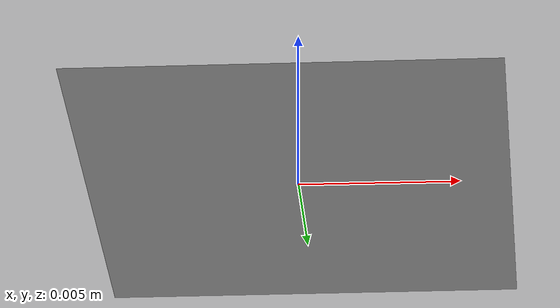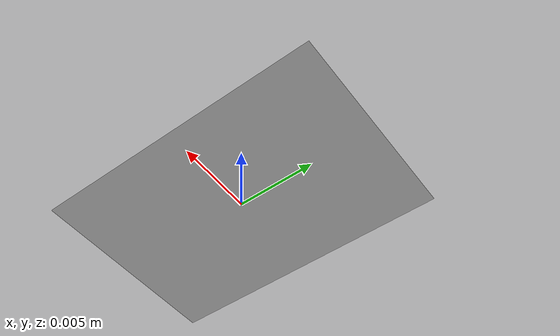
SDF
<?xml version='1.0'?>
<sdf version='1.4'>
	<model name="chessboard">
		<pose>0.0 0.0 0.0 0 0 -1.5708</pose>
		<static>true</static>
		<link name="board">
			<collision name="collision">
				<geometry>
					<mesh>
						<uri>/home/vagrant/rf_ws/src/Baxter-Chessbot/chessbot/models/chessboard/chessboard.dae</uri>
						<scale>0.0625 0.0625 0.0625</scale>
					</mesh>
				</geometry>
				<surface>
					<friction>
						<ode>
							<mu>1</mu>
							<mu2>1</mu2>
						</ode>
					</friction>
					<contact>
						<ode>
							<max_vel>0.1</max_vel>
							<min_depth>0.001</min_depth>
						</ode>
					</contact>
				</surface>
			</collision>
			<visual name="visual">
				<cast_shadows>false</cast_shadows>
				<geometry>
					<mesh>
						<uri>/home/vagrant/rf_ws/src/Baxter-Chessbot/chessbot/models/chessboard/chessboard.dae</uri>
						<scale>0.0625 0.0625 0.0625</scale>
					</mesh>
				</geometry>
			</visual>
		</link>
	</model>
</sdf>
